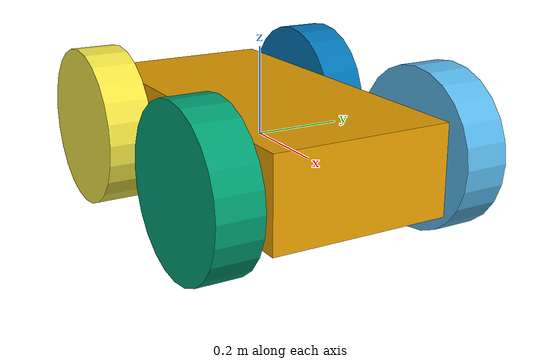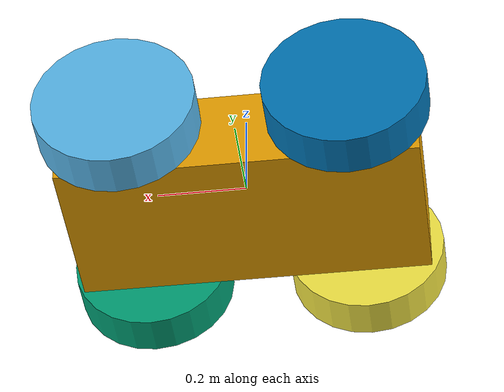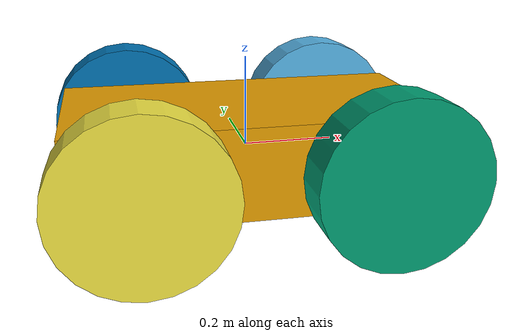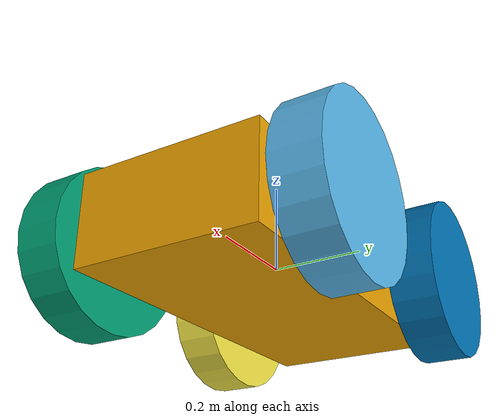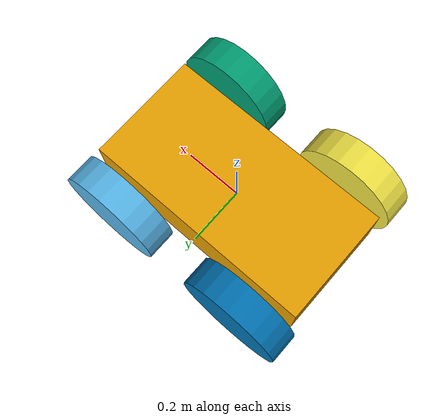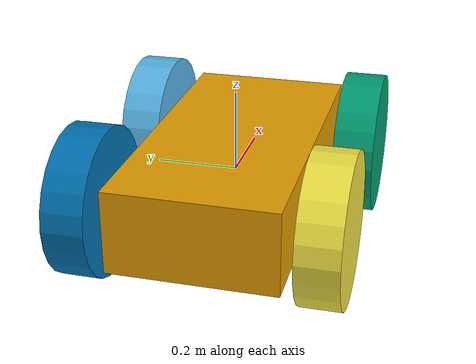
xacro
<?xml version="1.0" ?>
<robot name="mycar" xmlns:xacro="http://ros.org/wiki/xacro">

    <xacro:property name="radius" value="0.1"/>
    <xacro:property name="PI" value="3.14159265"/>

    <link name="base_link">
        <visual>
            <origin xyz="0 0 0" rpy="0 0 0"/>
            <geometry>
                <box size="0.8 0.4 0.2" />
            </geometry>
        </visual>
        <collision>
                    <origin xyz="0 0 0" rpy="0 0 0"/>
                    <geometry>
                        <box size="0.8 0.4 0.2" />
                    </geometry>
        </collision>
    </link>
    <joint name="left_front_wheel_joint" type="continuous">
        <origin xyz="0.25 0.28 0" rpy="0 0 0"/>
        <parent link="base_link"/>
        <child link="left_front_wheel"/>
        <axis xyz="0 1 0"/>
    </joint>
    <link name="left_front_wheel">
        <visual>
            <origin xyz="0 0 0" rpy="1.5707963 0.0 0.0"/>
            <geometry>
                <cylinder length="0.1" radius="0.18"/>
                <origin rpy="1.5707963 0.0 0.0"/>
            </geometry>
        </visual>
        <collision>
            <origin xyz="0.015 0.015 0"/>
            <geometry>
                <cylinder length="0.1" radius="0.1"/>
            </geometry>
        </collision>
    </link>

    <joint name="right_front_wheel_joint" type="continuous">
        <origin xyz="0.25 -0.28 0" rpy="0 0 0"/>
        <parent link="base_link"/>
        <child link="right_front_wheel"/>
        <axis xyz="0 1 0"/>
    </joint>
    <link name="right_front_wheel">
        <visual>
            <origin xyz="0 0 0" rpy="1.5707963 0.0 0.0"/>
            <geometry>
                <cylinder length="0.1" radius="0.18"/>
                <origin rpy="1.5707963 0.0 0.0"/>
            </geometry>
        </visual>
        <collision>
            <origin xyz="0.015 0.015 0"/>
            <geometry>
                <cylinder length="0.1" radius="0.1"/>
            </geometry>
        </collision>
    </link>
    <joint name="right_back_wheel_joint" type="continuous">
        <origin xyz="-0.25 -0.28 0" rpy="0 0 0"/>
        <parent link="base_link"/>
        <child link="right_back_wheel"/>
        <axis xyz="0 1 0"/>
    </joint>
    <link name="right_back_wheel">
        <visual>
            <origin xyz="0 0 0" rpy="1.5707963 0.0 0.0"/>
            <geometry>
                <cylinder length="0.1" radius="0.18"/>
                <origin rpy="1.5707963 0.0 0.0"/>
            </geometry>
        </visual>
        <collision>
            <origin xyz="0.015 0.015 0"/>
            <geometry>
                <cylinder length="0.1" radius="0.1"/>
            </geometry>
        </collision>
    </link>
    <joint name="left_back_wheel_joint" type="continuous">
        <origin xyz="-0.25 0.28 0" rpy="0 0 0"/>
        <parent link="base_link"/>
        <child link="left_back_wheel"/>
        <axis xyz="0 1 0"/>
    </joint>
    <link name="left_back_wheel">
        <visual>
            <origin xyz="0 0 0" rpy="1.5707963 0.0 0.0"/>
            <geometry>
                <cylinder length="0.1" radius="0.18"/>
                <origin rpy="1.5707963 0.0 0.0"/>
            </geometry>
        </visual>
        <collision>
            <origin xyz="0.015 0.015 0"/>
            <geometry>
                <cylinder length="0.1" radius="0.1"/>
            </geometry>
        </collision>
    </link>
</robot>
